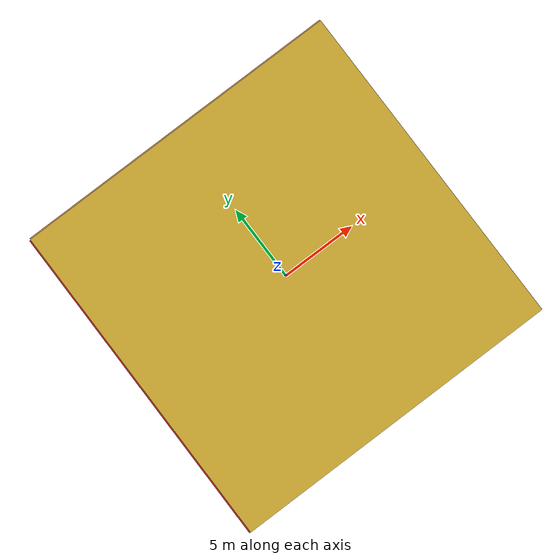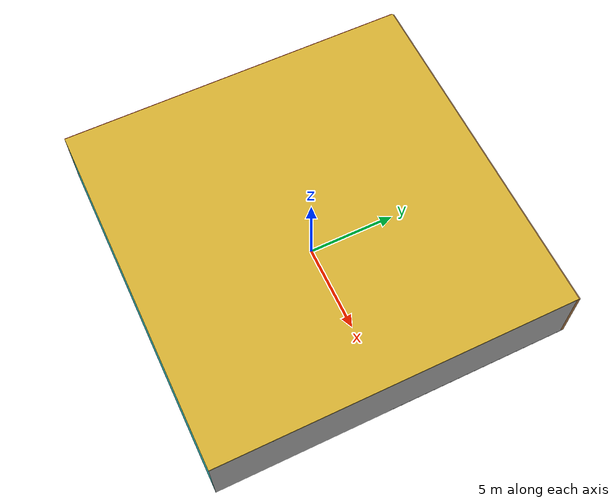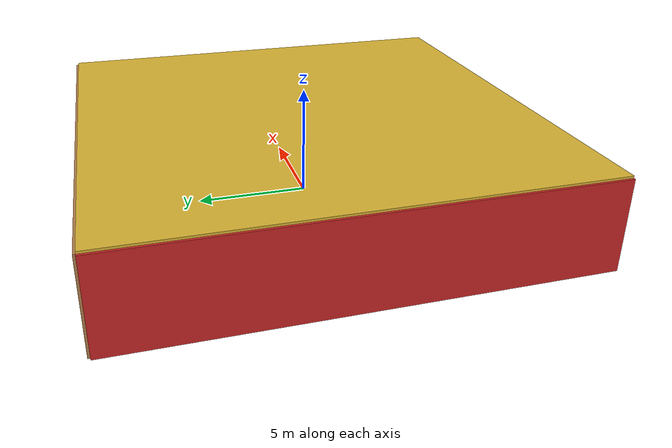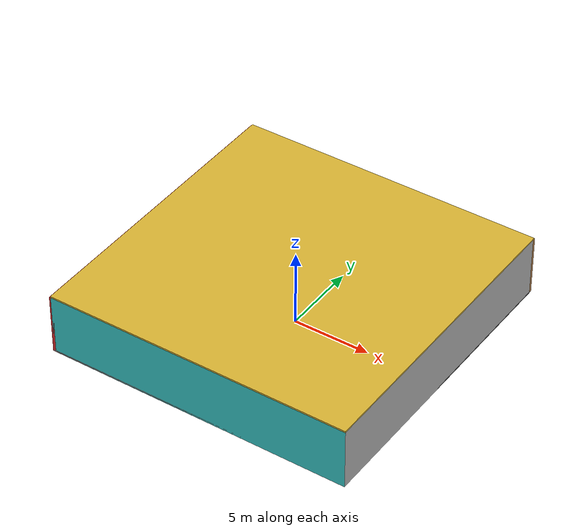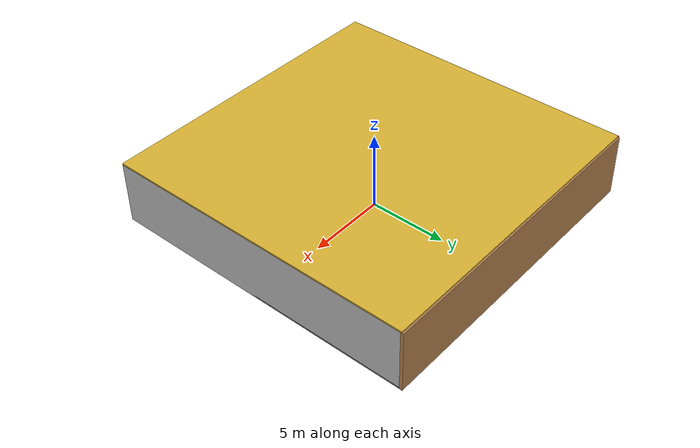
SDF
<sdf version="1.4">
 <world name="default">
  <physics type="ode">
   <max_step_size>0.001</max_step_size>
   <real_time_factor>1</real_time_factor>
   <real_time_update_rate>1000</real_time_update_rate>
   <gravity>0 0 -9.8</gravity>
  </physics>
  <scene><ambient>0.4 0.4 0.4 1</ambient><background>0.7 0.7 0.7 1</background><shadows>1</shadows></scene>
  <model name="Surrounding">
   <static>1</static>
   <link name="Ceiling">
    <collision name="Ceiling_Collision"><geometry><box><size>20 20 0.1</size></box></geometry></collision>
    <visual name="Ceiling_Visual">
     <geometry><box><size>20 20 0.1</size></box></geometry>
     <material>
      <script><uri>file://media/materials/scripts/gazebo.material</uri><name>Gazebo/Gold</name></script>
     </material>
    </visual>
    <pose>0 0 4.05 0 0 0</pose>
   </link>
   <link name="Wall_South">
    <collision name="Wall_South_Collision">
     <geometry><box><size>20 0 4</size></box></geometry>
     <pose>0 0 2 0 -0 0</pose>
    </collision>
    <visual name="Wall_South_Visual">
     <pose>0 0 2 0 -0 0</pose>
     <geometry><box><size>20 0 4</size></box></geometry>
     <material>
      <script><uri>file://media/materials/scripts/gazebo.material</uri><name>Gazebo/TurquoiseGlow</name></script>
     </material>
    </visual>
    <velocity_decay><linear>0</linear><angular>0</angular></velocity_decay>
    <pose>0 -10 0 0 -0 0</pose>
   </link>
   <link name="Wall_East">
    <collision name="Wall_21_Collision">
     <geometry><box><size>20 0 4</size></box></geometry>
     <pose>0 0 2 0 -0 0</pose>
    </collision>
    <visual name="Wall_21_Visual">
     <pose>0 0 2 0 -0 0</pose>
     <geometry><box><size>20 0 4</size></box></geometry>
     <material>
      <script><uri>file://media/materials/scripts/gazebo.material</uri><name>Gazebo/PioneerBody</name></script>
     </material>
    </visual>
    <velocity_decay><linear>0</linear><angular>0</angular></velocity_decay>
    <pose>10 0 0 0 -0 1.5708</pose>
   </link>
   <link name="Wall_North">
    <collision name="Wall_22_Collision">
     <geometry><box><size>20 0.2 4</size></box></geometry>
     <pose>0 0 2 0 -0 0</pose>
    </collision>
    <visual name="Wall_22_Visual">
     <pose>0 0 2 0 -0 0</pose>
     <geometry><box><size>20 0.2 4</size></box></geometry>
     <material>
      <script><uri>file://media/materials/scripts/gazebo.material</uri><name>Gazebo/WoodPallet</name></script>
     </material>
    </visual>
    <velocity_decay><linear>0</linear><angular>0</angular></velocity_decay>
    <pose>0 10 0 0 -0 0</pose>
   </link>
   <link name="Wall_West">
    <collision name="Wall_23_Collision">
     <geometry><box><size>20 0.2 4</size></box></geometry>
     <pose>0 0 2 0 -0 0</pose>
    </collision>
    <visual name="Wall_23_Visual">
     <pose>0 0 2 0 -0 0</pose>
     <geometry><box><size>20 0.2 4</size></box></geometry>
     <material>
      <script><uri>file://media/materials/scripts/gazebo.material</uri><name>Gazebo/RedGlow</name></script>
     </material>
    </visual>
    <velocity_decay><linear>0</linear><angular>0</angular></velocity_decay>
    <pose>-10 0 0 0 0 -1.5708</pose>
   </link>
   <link name="Ground_link">
    <collision name="collision">
     <pose>0 0 .05 0 -0 0</pose>
     <geometry><box><size>20 20 0.1</size></box></geometry>
    </collision>
    <visual name="visual">
     <pose>0 0 .05 0 -0 0</pose>
     <geometry><box><size>20 20 0.1</size></box></geometry>
     <material>
      <script><uri>file://media/materials/scripts/gazebo.material</uri><name>Gazebo/Black</name></script>
     </material>
    </visual>
   </link>
   <static>1</static>
  </model>
  <spherical_coordinates>
   <surface_model>EARTH_WGS84</surface_model>
   <latitude_deg>0</latitude_deg>
   <longitude_deg>0</longitude_deg>
   <elevation>0</elevation>
   <heading_deg>0</heading_deg>
  </spherical_coordinates>
  <light name="lightball_0" type="diffuse">
   <diffuse>0.8 0.8 0.8 1</diffuse>
   <specular>0.2 0.2 0.2 1</specular>
   <attenuation>
    <range>100</range>
    <constant>0.7</constant>
    <linear>0.01</linear>
    <quadratic>0.001</quadratic>
   </attenuation>
   <direction>-0.5 0.1 -0.9</direction>
   <pose>-2.2766593914 0.497392145804 3.6596038007 0 0 0</pose>
  </light>
  <light name="lightball_1" type="diffuse">
   <diffuse>0.8 0.8 0.8 1</diffuse>
   <specular>0.2 0.2 0.2 1</specular>
   <attenuation>
    <range>100</range>
    <constant>0.7</constant>
    <linear>0.01</linear>
    <quadratic>0.001</quadratic>
   </attenuation>
   <direction>-0.5 0.1 -0.9</direction>
   <pose>6.63395917181 -2.52250052424 2.96423143734 0 0 0</pose>
  </light>
  <light name="lightball_2" type="diffuse">
   <diffuse>0.8 0.8 0.8 1</diffuse>
   <specular>0.2 0.2 0.2 1</specular>
   <attenuation>
    <range>100</range>
    <constant>0.7</constant>
    <linear>0.01</linear>
    <quadratic>0.001</quadratic>
   </attenuation>
   <direction>-0.5 0.1 -0.9</direction>
   <pose>3.24156503193 4.7921795389 0.918130809398 0 0 0</pose>
  </light>
  <light name="lightball_3" type="diffuse">
   <diffuse>0.8 0.8 0.8 1</diffuse>
   <specular>0.2 0.2 0.2 1</specular>
   <attenuation>
    <range>100</range>
    <constant>0.7</constant>
    <linear>0.01</linear>
    <quadratic>0.001</quadratic>
   </attenuation>
   <direction>-0.5 0.1 -0.9</direction>
   <pose>-5.94872366444 3.85221495539 2.57718846414 0 0 0</pose>
  </light>
  <light name="lightball_4" type="diffuse">
   <diffuse>0.8 0.8 0.8 1</diffuse>
   <specular>0.2 0.2 0.2 1</specular>
   <attenuation>
    <range>100</range>
    <constant>0.7</constant>
    <linear>0.01</linear>
    <quadratic>0.001</quadratic>
   </attenuation>
   <direction>-0.5 0.1 -0.9</direction>
   <pose>-0.607483245821 7.86496193347 3.73084033537 0 0 0</pose>
  </light>
  <light name="lightball_5" type="diffuse">
   <diffuse>0.8 0.8 0.8 1</diffuse>
   <specular>0.2 0.2 0.2 1</specular>
   <attenuation>
    <range>100</range>
    <constant>0.7</constant>
    <linear>0.01</linear>
    <quadratic>0.001</quadratic>
   </attenuation>
   <direction>-0.5 0.1 -0.9</direction>
   <pose>-8.94891158318 9.23297183131 2.70097246745 0 0 0</pose>
  </light>
  <include>
   <uri>model://robocup_3Dsim_goal</uri>
   <pose>-5.44842690446 0.310670423212 0 0 0 0.438280031511</pose>
  </include>
  <include>
   <uri>model://textured_shapes</uri>
   <pose>3.5483383751 -0.867753777438 0 0 0 1.51171063321</pose>
  </include>
  <include>
   <uri>model://construction_cone</uri>
   <pose>5.10500560706 0.461321706212 0 0 0 1.87416693759</pose>
  </include>
  <include>
   <uri>model://construction_cone</uri>
   <pose>7.05238129666 -0.834458455506 0 0 0 0.213474873177</pose>
  </include>
  <include><uri>model://cabinet</uri><pose>7.4656889706 8.01458014971 0 0 0 1.40385629891</pose></include>
 </world>
</sdf>

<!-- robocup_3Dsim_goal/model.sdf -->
<sdf version="1.5">
  <model name="robocup_3d_goal">
    <static>true</static>
    <link name="left_post">
      <pose>0 1.05 0.45 0 0 0</pose>
      <collision name="collision">
        <geometry>
          <cylinder>
            <radius>0.05</radius>
            <length>0.9</length>
          </cylinder>
        </geometry>
      </collision>
      <visual name="visual">
        <geometry>
          <cylinder>
            <radius>0.05</radius>
            <length>0.9</length>
          </cylinder>
        </geometry>
        <material>
          <script>
            <uri>file://media/materials/scripts/gazebo.material</uri>
            <name>Gazebo/ZincYellow</name>
          </script>
        </material>
      </visual>
    </link>
    <link name="left_support_horiz_lower">
      <pose>0.30 1.05 0.01 0 0 0</pose>
      <collision name="collision">
        <geometry>
          <box>
            <size>0.50 0.02 0.02</size>
          </box>
        </geometry>
      </collision>
      <visual name="visual">
        <geometry>
          <box>
            <size>0.50 0.02 0.02</size>
          </box>
        </geometry>
        <material>
          <script>
            <uri>file://media/materials/scripts/gazebo.material</uri>
            <name>Gazebo/White</name>
          </script>
        </material>
      </visual>
    </link>
    <link name="left_support_horiz_upper">
      <pose>0.30 1.05 0.79 0 0 0</pose>
      <collision name="collision">
        <geometry>
          <box>
            <size>0.50 0.02 0.02</size>
          </box>
        </geometry>
      </collision>
      <visual name="visual">
        <geometry>
          <box>
            <size>0.50 0.02 0.02</size>
          </box>
        </geometry>
        <material>
          <script>
            <uri>file://media/materials/scripts/gazebo.material</uri>
            <name>Gazebo/White</name>
          </script>
        </material>
      </visual>
    </link>
    <link name="left_support_vertical">
      <pose>0.56 1.05 0.4 0 1.5708 0</pose>
      <collision name="collision">
        <geometry>
          <box>
            <size>0.80 0.02 0.02</size>
          </box>
        </geometry>
      </collision>
      <visual name="visual">
        <geometry>
          <box>
            <size>0.80 0.02 0.02</size>
          </box>
        </geometry>
        <material>
          <script>
            <uri>file://media/materials/scripts/gazebo.material</uri>
            <name>Gazebo/White</name>
          </script>
        </material>
      </visual>
    </link>
    <link name="right_support_horiz_lower">
      <pose>0.30 -1.05 0.01 0 0 0</pose>
      <collision name="collision">
        <geometry>
          <box>
            <size>0.50 0.02 0.02</size>
          </box>
        </geometry>
      </collision>
      <visual name="visual">
        <geometry>
          <box>
            <size>0.50 0.02 0.02</size>
          </box>
        </geometry>
        <material>
          <script>
            <uri>file://media/materials/scripts/gazebo.material</uri>
            <name>Gazebo/White</name>
          </script>
        </material>
      </visual>
    </link>
    <link name="right_support_horiz_upper">
      <pose>0.30 -1.05 0.79 0 0 0</pose>
      <collision name="collision">
        <geometry>
          <box>
            <size>0.50 0.02 0.02</size>
          </box>
        </geometry>
      </collision>
      <visual name="visual">
        <geometry>
          <box>
            <size>0.50 0.02 0.02</size>
          </box>
        </geometry>
        <material>
          <script>
            <uri>file://media/materials/scripts/gazebo.material</uri>
            <name>Gazebo/White</name>
          </script>
        </material>
      </visual>
    </link>
    <link name="right_support_vertical">
      <pose>0.56 -1.05 0.4 0 1.5708 0</pose>
      <collision name="collision">
        <geometry>
          <box>
            <size>0.80 0.02 0.02</size>
          </box>
        </geometry>
      </collision>
      <visual name="visual">
        <geometry>
          <box>
            <size>0.80 0.02 0.02</size>
          </box>
        </geometry>
        <material>
          <script>
            <uri>file://media/materials/scripts/gazebo.material</uri>
            <name>Gazebo/White</name>
          </script>
        </material>
      </visual>
    </link>
    <link name="center_support_horiz_lower">
      <pose>0.56 0 0.01 0 1.5708 0</pose>
      <collision name="collision">
        <geometry>
          <box>
            <size>0.02 2.08 0.02</size>
          </box>
        </geometry>
      </collision>
      <visual name="visual">
        <geometry>
          <box>
            <size>0.02 2.08 0.02</size>
          </box>
        </geometry>
        <material>
          <script>
            <uri>file://media/materials/scripts/gazebo.material</uri>
            <name>Gazebo/White</name>
          </script>
        </material>
      </visual>
    </link>
    <link name="center_support_horiz_upper">
      <pose>0.56 0 0.79 0 1.5708 0</pose>
      <collision name="collision">
        <geometry>
          <box>
            <size>0.02 2.08 0.02</size>
          </box>
        </geometry>
      </collision>
      <visual name="visual">
        <geometry>
          <box>
            <size>0.02 2.08 0.02</size>
          </box>
        </geometry>
        <material>
          <script>
            <uri>file://media/materials/scripts/gazebo.material</uri>
            <name>Gazebo/White</name>
          </script>
        </material>
      </visual>
    </link>
    <link name="right_post">
      <pose>0 -1.05 0.45 0 0 0</pose>
      <collision name="collision">
        <geometry>
          <cylinder>
            <radius>0.05</radius>
            <length>0.9</length>
          </cylinder>
        </geometry>
      </collision>
      <visual name="visual">
        <geometry>
          <cylinder>
            <radius>0.05</radius>
            <length>0.9</length>
          </cylinder>
        </geometry>
        <material>
          <script>
            <uri>file://media/materials/scripts/gazebo.material</uri>
            <name>Gazebo/ZincYellow</name>
          </script>
        </material>
      </visual>
    </link>
    <link name="crossbar">
      <pose>0 0 0.85 1.57 1.57 0</pose>
      <collision name="collision">
        <geometry>
          <cylinder>
            <radius>0.05</radius>
            <length>2.0</length>
          </cylinder>
        </geometry>
      </collision>
      <visual name="visual">
        <geometry>
          <cylinder>
            <radius>0.05</radius>
            <length>2.0</length>
          </cylinder>
        </geometry>
        <material>
          <script>
            <uri>file://media/materials/scripts/gazebo.material</uri>
            <name>Gazebo/ZincYellow</name>
          </script>
        </material>
      </visual>
    </link>
    <link name="center_net">
      <pose>0.56 0 0.40 0 0 0</pose>
      <collision name="collision">
        <geometry>
          <box>
            <size>0.01 2.1 0.80</size>
          </box>
        </geometry>
      </collision>
      <visual name="visual">
        <geometry>
          <box>
            <size>0.01 2.1 0.80</size>
          </box>
        </geometry>
        <material>
          <script>
            <uri>model://../model_source/models/robocup09_spl_field/materials/scripts/</uri>
            <uri>model://../model_source/models/robocup09_spl_field/materials/textures/</uri>
            <name>RoboCup/Net</name>
          </script>
        </material>
      </visual>
    </link>
    <link name="left_net">
      <pose>0.30 1.05 0.40 0 0 0</pose>
      <collision name="collision">
        <geometry>
          <box>
            <size>0.50 0.01 0.76</size>
          </box>
        </geometry>
      </collision>
      <visual name="visual">
        <geometry>
          <box>
            <size>0.50 0.01 0.76</size>
          </box>
        </geometry>
        <material>
          <script>
            <uri>model://../model_source/models/robocup09_spl_field/materials/scripts/</uri>
            <uri>model://../model_source/models/robocup09_spl_field/materials/textures/</uri>
            <name>RoboCup/Net</name>
          </script>
        </material>
      </visual>
    </link>
    <link name="right_net">
      <pose>0.30 -1.05 0.40 0 0 0</pose>
      <collision name="collision">
        <geometry>
          <box>
            <size>0.50 0.01 0.76</size>
          </box>
        </geometry>
      </collision>
      <visual name="visual">
        <geometry>
          <box>
            <size>0.50 0.01 0.76</size>
          </box>
        </geometry>
        <material>
          <script>
            <uri>model://../model_source/models/robocup09_spl_field/materials/scripts/</uri>
            <uri>model://../model_source/models/robocup09_spl_field/materials/textures/</uri>
            <name>RoboCup/Net</name>
          </script>
        </material>
      </visual>
    </link>
  </model>
</sdf>

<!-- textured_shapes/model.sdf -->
<sdf version="1.6">
  <model name="textured_shapes">
    <pose>0 0 0.5 0 0 0</pose>
    <link name="box">
      <pose>0 -1.5 0 0 0 0</pose>
      <collision name="collision">
        <geometry>
          <box>
            <size>1 1 1</size>
          </box>
        </geometry>
      </collision>
      <visual name="visual">
        <geometry>
          <box>
            <size>1 1 1</size>
          </box>
        </geometry>
        <material>
          <script>
            <uri>model://../model_source/models/textured_shapes/materials/scripts</uri>
            <uri>model://../model_source/models/textured_shapes/materials/textures</uri>
            <name>TexturedShape/Squares</name>
          </script>
        </material>
      </visual>
    </link>
    <link name="sphere">
      <collision name="collision">
        <geometry>
          <sphere>
            <radius>0.5</radius>
          </sphere>
        </geometry>
      </collision>
      <visual name="visual">
        <geometry>
          <sphere>
            <radius>0.5</radius>
          </sphere>
        </geometry>
        <material>
          <script>
            <uri>model://../model_source/models/textured_shapes/materials/scripts</uri>
            <uri>model://../model_source/models/textured_shapes/materials/textures</uri>
            <name>TexturedShape/Squares</name>
          </script>
        </material>
      </visual>
    </link>
    <link name="cylinder">
      <pose>0 1.5 0 0 0 0</pose>
      <collision name="collision">
        <geometry>
          <cylinder>
            <radius>0.5</radius>
            <length>1</length>
          </cylinder>
        </geometry>
      </collision>
      <visual name="visual">
        <geometry>
          <cylinder>
            <radius>0.5</radius>
            <length>1</length>
          </cylinder>
        </geometry>
        <material>
          <script>
            <uri>model://../model_source/models/textured_shapes/materials/scripts</uri>
            <uri>model://../model_source/models/textured_shapes/materials/textures</uri>
            <name>TexturedShape/Squares</name>
          </script>
        </material>
      </visual>
    </link>
  </model>
</sdf>

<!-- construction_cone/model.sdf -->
<sdf version="1.5">
  <model name="Construction Cone">
    <link name="link">
      <collision name="collision">
        <geometry>
          <mesh>
            <scale>10 10 10</scale>
            <uri>file://isr-testbed/construction_cone/meshes/construction_cone.dae</uri>
          </mesh>
        </geometry>
      </collision>
      <visual name="visual">
        <geometry>
          <mesh>
            <scale>10 10 10</scale>
            <uri>file://isr-testbed/construction_cone/meshes/construction_cone.dae</uri>
          </mesh>
        </geometry>
      </visual>
    </link>
  </model>
</sdf>

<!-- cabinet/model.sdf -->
<sdf version="1.5">
  <model name="cabinet">
    <static>true</static>
    <link name="cabinet_bottom_plate">
      <inertial>
        <pose>0 0 -1 0 0 0</pose>
        <inertia>
          <ixx>2.050000</ixx>
          <ixy>0</ixy>
          <ixz>0</ixz>
          <iyy>2.050000</iyy>
          <iyz>0</iyz>
          <izz>2.050000</izz>
        </inertia>
        <mass>25.000000</mass>
      </inertial>
      <collision name="cabinet_bottom_plate_geom">
        <pose>0 0 0.010000 0 0 0</pose>
        <geometry>
          <box>
            <size>0.450000 0.450000 0.020000</size>
          </box>
        </geometry>
      </collision>
      <visual name="cabinet_bottom_plate_geom_visual">
        <pose>0 0 0.010000 0 0 0</pose>
        <geometry>
          <box>
            <size>0.450000 0.450000 0.020000</size>
          </box>
        </geometry>
        <material>
          <script>
            <uri>model://media/materials/scripts/gazebo.material</uri>
            <name>Gazebo/Wood</name>
          </script>
        </material>
      </visual>
      <collision name="cabinet_bottom_plate_geom_cabinet_back_plate">
        <pose>0.235000 0 0.510000 0 0 0</pose>
        <geometry>
          <box>
            <size>0.020000 0.450000 1.020000</size>
          </box>
        </geometry>
      </collision>
      <visual name="cabinet_bottom_plate_geom_cabinet_back_plate_visual">
        <pose>0.235000 0 0.510000 0 0 0</pose>
        <geometry>
          <box>
            <size>0.020000 0.450000 1.020000</size>
          </box>
        </geometry>
        <material>
          <script>
            <uri>model://media/materials/scripts/gazebo.material</uri>
            <name>Gazebo/Wood</name>
          </script>
        </material>
      </visual>
      <collision name="cabinet_bottom_plate_geom_cabinet_left_plate">
        <pose>0 0.235000 0.510000 0 0 0</pose>
        <geometry>
          <box>
            <size>0.450000 0.020000 1.020000</size>
          </box>
        </geometry>
      </collision>
      <visual name="cabinet_bottom_plate_geom_cabinet_left_plate_visual">
        <pose>0 0.235000 0.510000 0 0 0</pose>
        <geometry>
          <box>
            <size>0.450000 0.020000 1.020000</size>
          </box>
        </geometry>
        <material>
          <script>
            <uri>model://media/materials/scripts/gazebo.material</uri>
            <name>Gazebo/Wood</name>
          </script>
        </material>
      </visual>
      <collision name="cabinet_bottom_plate_geom_cabinet_middle_plate">
        <pose>0 0 0.510000 0 0 0</pose>
        <geometry>
          <box>
            <size>0.450000 0.450000 0.020000</size>
          </box>
        </geometry>
      </collision>
      <visual name="cabinet_bottom_plate_geom_cabinet_middle_plate_visual">
        <pose>0 0 0.510000 0 0 0</pose>
        <geometry>
          <box>
            <size>0.450000 0.450000 0.020000</size>
          </box>
        </geometry>
        <material>
          <script>
            <uri>model://media/materials/scripts/gazebo.material</uri>
            <name>Gazebo/Wood</name>
          </script>
        </material>
      </visual>
      <collision name="cabinet_bottom_plate_geom_cabinet_right_plate">
        <pose>0 -0.235000 0.510000 0 0 0</pose>
        <geometry>
          <box>
            <size>0.450000 0.020000 1.020000</size>
          </box>
        </geometry>
      </collision>
      <visual name="cabinet_bottom_plate_geom_cabinet_right_plate_visual">
        <pose>0 -0.235000 0.510000 0 0 0</pose>
        <geometry>
          <box>
            <size>0.450000 0.020000 1.020000</size>
          </box>
        </geometry>
        <material>
          <script>
            <uri>model://media/materials/scripts/gazebo.material</uri>
            <name>Gazebo/Wood</name>
          </script>
        </material>
      </visual>
      <collision name="cabinet_bottom_plate_geom_cabinet_top_plate">
        <pose>0 0 1.010000 0 0 0</pose>
        <geometry>
          <box>
            <size>0.450000 0.450000 0.020000</size>
          </box>
        </geometry>
      </collision>
      <visual name="cabinet_bottom_plate_geom_cabinet_top_plate_visual">
        <pose>0 0 1.010000 0 0 0</pose>
        <geometry>
          <box>
            <size>0.450000 0.450000 0.020000</size>
          </box>
        </geometry>
        <material>
          <script>
            <uri>model://media/materials/scripts/gazebo.material</uri>
            <name>Gazebo/Wood</name>
          </script>
        </material>
      </visual>
    </link>
  </model>
</sdf>
